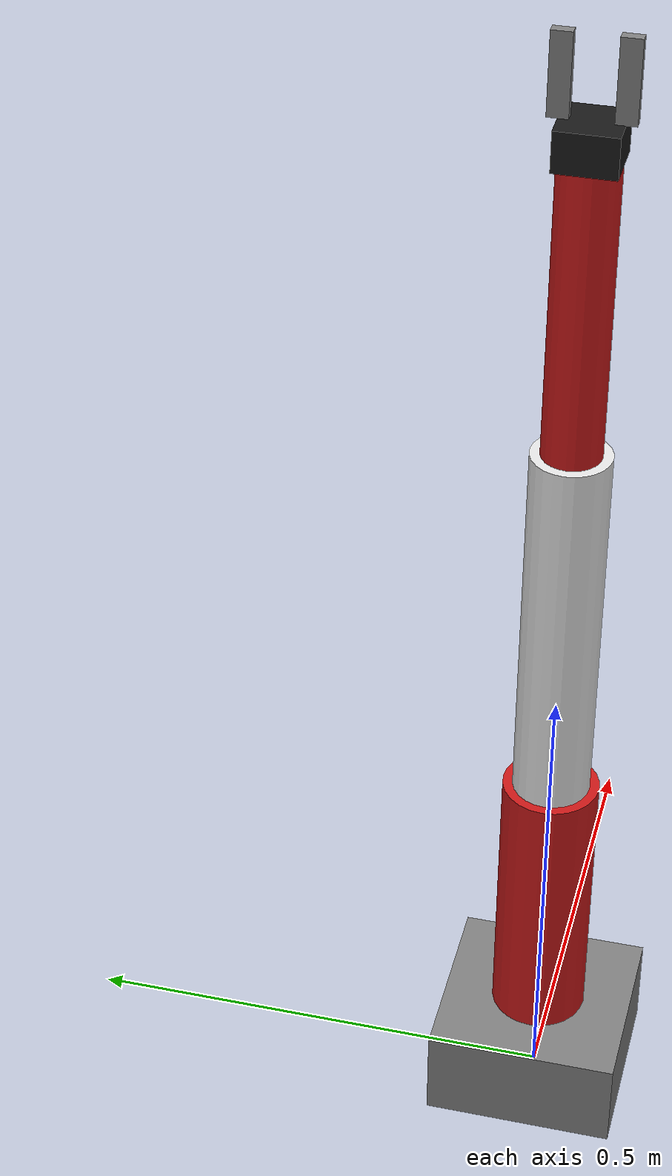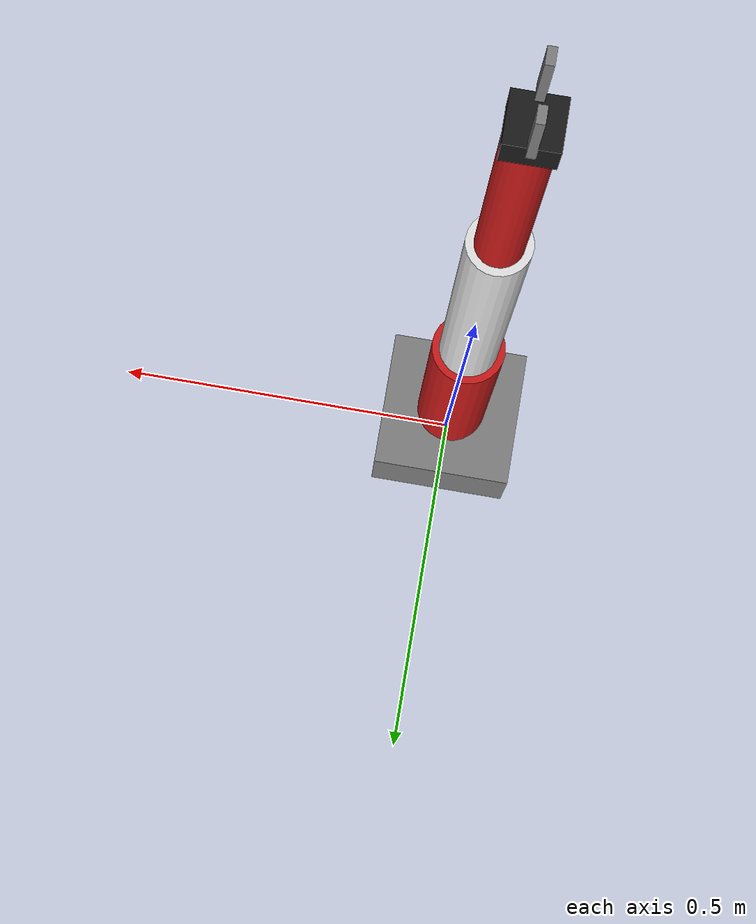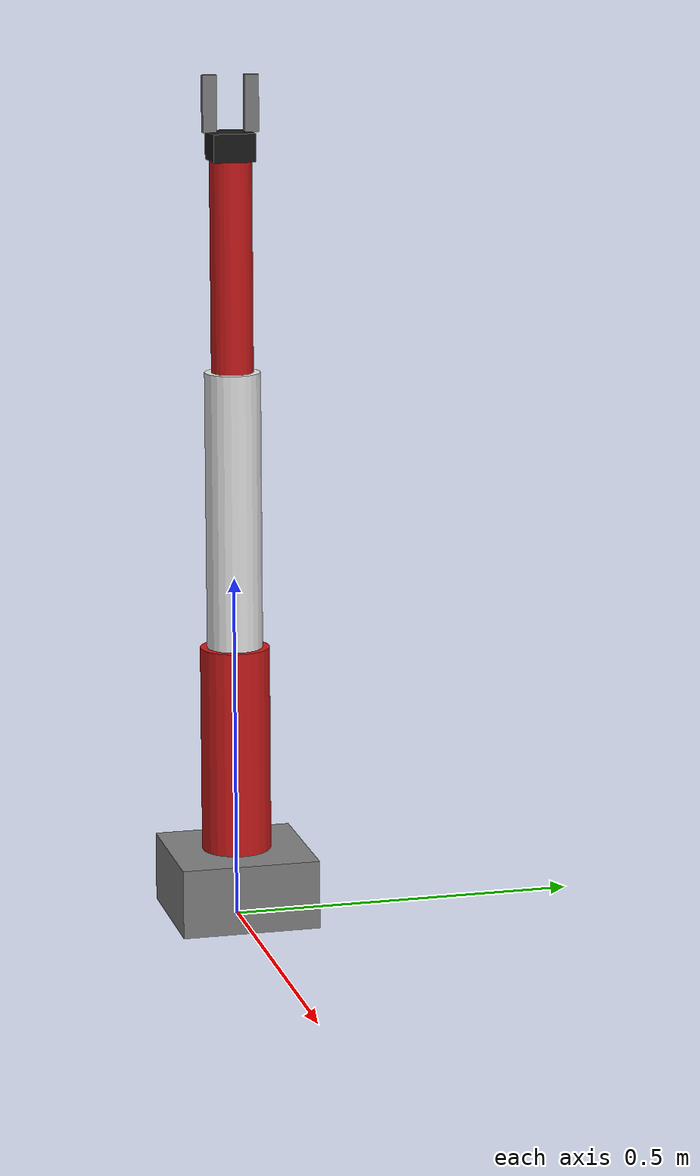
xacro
<?xml version="1.0"?>
<robot xmlns:xacro="http://www.ros.org/wiki/xacro" name="my_robot">
    <!-- Import my_robot urdf file -->
    <xacro:include filename="$(find my_robot_description)/urdf/my_robot.urdf" />

    <!-- Import control xacro -->
    <xacro:include filename="my_robot.ros2_control.xacro" />

    <xacro:my_robot_ros2_control name="FakeSystem" />

    <gazebo>
        <plugin filename="libgz_ros2_control-system.so"
                name="gz_ros2_control::GazeboSimROS2ControlPlugin">
            <parameters>$(find my_robot_moveit_config)/config/ros2_controllers.yaml</parameters>
            <controller_manager_name>controller_manager</controller_manager_name>
        </plugin>
    </gazebo>
</robot>

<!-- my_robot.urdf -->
<robot name="my_robot">

  <!-- Materials -->
  <material name="gray">
    <color rgba="0.5 0.5 0.5 1"/>
  </material>
  <material name="red">
    <color rgba="0.8 0.1 0.1 1"/>
  </material>
  <material name="white">
    <color rgba="0.9 0.9 0.9 1"/>
  </material>
  <material name="black">
    <color rgba="0.1 0.1 0.1 1"/>
  </material>

  <!-- World link -->
  <link name="world"/>

  <!-- World to Base Joint -->
  <joint name="world_to_base" type="fixed">
    <parent link="world"/>
    <child link="base_link"/>
    <origin xyz="0 0 0" rpy="0 0 0"/>
  </joint>

  <!-- Base Link -->
  <link name="base_link">
    <visual>
      <origin xyz="0 0 0.05" rpy="0 0 0"/>
      <geometry>
        <box size="0.2 0.2 0.1"/>
      </geometry>
      <material name="gray"/>
    </visual>
    <collision>
      <origin xyz="0 0 0.05" rpy="0 0 0"/>
      <geometry>
        <box size="0.2 0.2 0.1"/>
      </geometry>
    </collision>
    <inertial>
      <origin xyz="0 0 0.05" rpy="0 0 0"/>
      <mass value="2.0"/>
      <inertia ixx="0.0083" ixy="0.0" ixz="0.0" iyy="0.0083" iyz="0.0" izz="0.0133"/>
    </inertial>
  </link>

  <!-- Joint 1: Base to Link 1 (Revolute Z) -->
  <joint name="joint_1" type="revolute">
    <parent link="base_link"/>
    <child link="link_1"/>
    <origin xyz="0 0 0.1" rpy="0 0 0"/>
    <axis xyz="0 0 1"/>
    <limit lower="-3.14" upper="3.14" effort="10.0" velocity="1.0"/>
  </joint>

  <!-- Link 1 -->
  <link name="link_1">
    <visual>
      <origin xyz="0 0 0.15" rpy="0 0 0"/>
      <geometry>
        <cylinder length="0.3" radius="0.05"/>
      </geometry>
      <material name="red"/>
    </visual>
    <collision>
      <origin xyz="0 0 0.15" rpy="0 0 0"/>
      <geometry>
        <cylinder length="0.3" radius="0.05"/>
      </geometry>
    </collision>
    <inertial>
      <origin xyz="0 0 0.15" rpy="0 0 0"/>
      <mass value="0.6"/>
      <inertia ixx="0.004875" ixy="0.0" ixz="0.0" iyy="0.004875" iyz="0.0" izz="0.00075"/>
    </inertial>
  </link>

  <!-- Joint 2: Link 1 to Link 2 (Revolute Y) -->
  <joint name="joint_2" type="revolute">
    <parent link="link_1"/>
    <child link="link_2"/>
    <origin xyz="0 0 0.3" rpy="0 0 0"/>
    <axis xyz="0 1 0"/>
    <limit lower="-1.57" upper="1.57" effort="10.0" velocity="1.0"/>
  </joint>

  <!-- Link 2 -->
  <link name="link_2">
    <visual>
      <origin xyz="0 0 0.2" rpy="0 0 0"/>
      <geometry>
        <cylinder length="0.4" radius="0.04"/>
      </geometry>
      <material name="white"/>
    </visual>
    <collision>
      <origin xyz="0 0 0.2" rpy="0 0 0"/>
      <geometry>
        <cylinder length="0.4" radius="0.04"/>
      </geometry>
    </collision>
    <inertial>
      <origin xyz="0 0 0.2" rpy="0 0 0"/>
      <mass value="0.8"/>
      <inertia ixx="0.011" ixy="0.0" ixz="0.0" iyy="0.011" iyz="0.0" izz="0.00064"/>
    </inertial>
  </link>

  <!-- Joint 3: Link 2 to Link 3 (Revolute Y) -->
  <joint name="joint_3" type="revolute">
    <parent link="link_2"/>
    <child link="link_3"/>
    <origin xyz="0 0 0.4" rpy="0 0 0"/>
    <axis xyz="0 1 0"/>
    <limit lower="-1.57" upper="1.57" effort="10.0" velocity="1.0"/>
  </joint>

  <!-- Link 3 -->
  <link name="link_3">
    <visual>
      <origin xyz="0 0 0.15" rpy="0 0 0"/>
      <geometry>
        <cylinder length="0.3" radius="0.03"/>
      </geometry>
      <material name="red"/>
    </visual>
    <collision>
      <origin xyz="0 0 0.15" rpy="0 0 0"/>
      <geometry>
        <cylinder length="0.3" radius="0.03"/>
      </geometry>
    </collision>
    <inertial>
      <origin xyz="0 0 0.15" rpy="0 0 0"/>
      <mass value="0.6"/>
      <inertia ixx="0.004635" ixy="0.0" ixz="0.0" iyy="0.004635" iyz="0.0" izz="0.00027"/>
    </inertial>
  </link>

  <!-- Joint Fixed: Link 3 to Gripper Base -->
  <joint name="gripper_fixed" type="fixed">
    <parent link="link_3"/>
    <child link="gripper_base"/>
    <origin xyz="0 0 0.3" rpy="0 0 0"/>
  </joint>

  <!-- Gripper Base -->
  <link name="gripper_base">
    <visual>
      <origin xyz="0 0 0.02" rpy="0 0 0"/>
      <geometry>
        <box size="0.06 0.06 0.04"/>
      </geometry>
      <material name="black"/>
    </visual>
    <collision>
      <origin xyz="0 0 0.02" rpy="0 0 0"/>
      <geometry>
        <box size="0.06 0.06 0.04"/>
      </geometry>
    </collision>
    <inertial>
      <origin xyz="0 0 0.02" rpy="0 0 0"/>
      <mass value="0.2"/>
      <inertia ixx="0.000086" ixy="0.0" ixz="0.0" iyy="0.000086" iyz="0.0" izz="0.00012"/>
    </inertial>
  </link>

  <!-- Joint Prismatic: Left Finger -->
  <joint name="left_finger_joint" type="prismatic">
    <parent link="gripper_base"/>
    <child link="left_finger"/>
    <origin xyz="0 0.02 0.04" rpy="0 0 0"/>
    <axis xyz="0 1 0"/>
    <limit lower="0.0" upper="0.04" effort="10.0" velocity="1.0"/>
  </joint>

  <!-- Left Finger -->
  <link name="left_finger">
    <visual>
      <origin xyz="0 0.01 0.04" rpy="0 0 0"/>
      <geometry>
        <box size="0.01 0.02 0.08"/>
      </geometry>
      <material name="gray"/>
    </visual>
    <collision>
      <origin xyz="0 0.01 0.04" rpy="0 0 0"/>
      <geometry>
        <box size="0.01 0.02 0.08"/>
      </geometry>
    </collision>
    <inertial>
      <origin xyz="0 0.01 0.04" rpy="0 0 0"/>
      <mass value="0.05"/>
      <inertia ixx="0.0000283" ixy="0.0" ixz="0.0" iyy="0.000027" iyz="0.0" izz="0.000002"/>
    </inertial>
  </link>

  <!-- Joint Prismatic: Right Finger -->
  <joint name="right_finger_joint" type="prismatic">
    <parent link="gripper_base"/>
    <child link="right_finger"/>
    <origin xyz="0 -0.02 0.04" rpy="0 0 0"/>
    <axis xyz="0 -1 0"/>
    <limit lower="0.0" upper="0.04" effort="10.0" velocity="1.0"/>
  </joint>

  <!-- Right Finger -->
  <link name="right_finger">
    <visual>
      <origin xyz="0 -0.01 0.04" rpy="0 0 0"/>
      <geometry>
        <box size="0.01 0.02 0.08"/>
      </geometry>
      <material name="gray"/>
    </visual>
    <collision>
      <origin xyz="0 -0.01 0.04" rpy="0 0 0"/>
      <geometry>
        <box size="0.01 0.02 0.08"/>
      </geometry>
    </collision>
    <inertial>
      <origin xyz="0 -0.01 0.04" rpy="0 0 0"/>
      <mass value="0.05"/>
      <inertia ixx="0.0000283" ixy="0.0" ixz="0.0" iyy="0.000027" iyz="0.0" izz="0.000002"/>
    </inertial>
  </link>

</robot>
